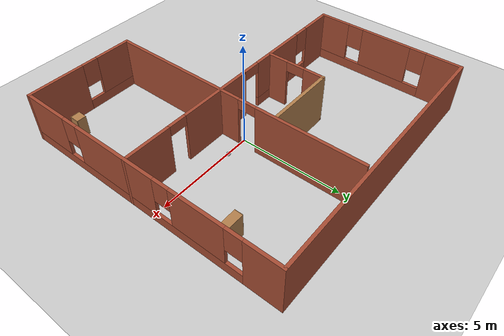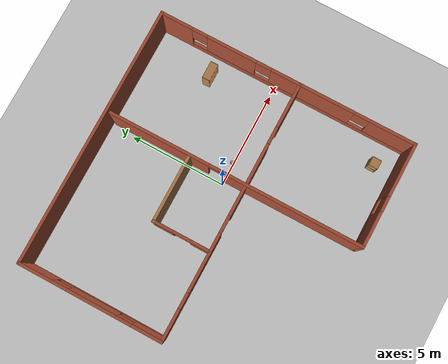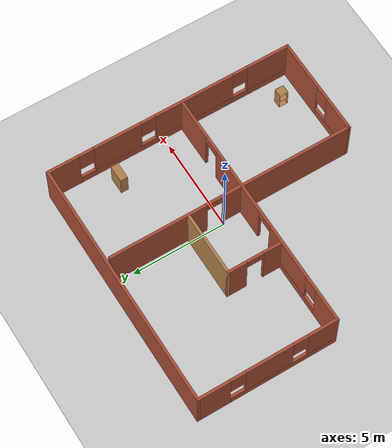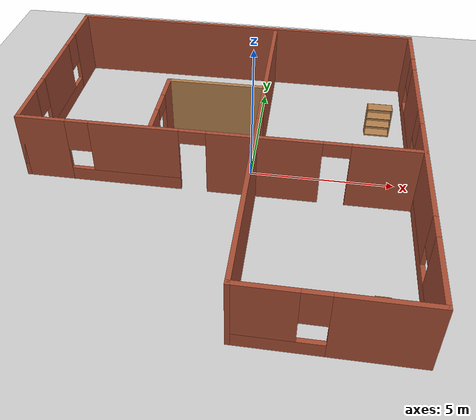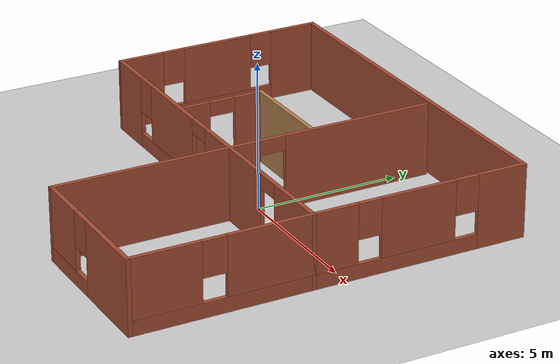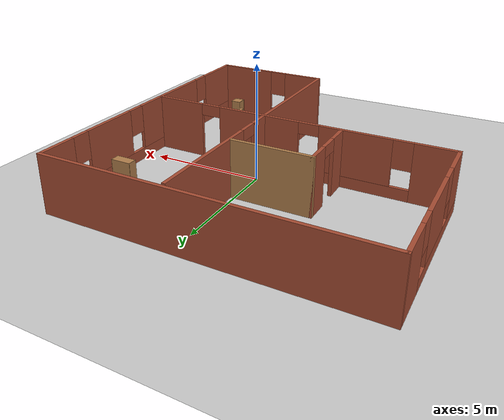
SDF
<sdf version="1.6">
 <world name="default">
  <plugin name="hello" filename="libhello.so"/>
  <light name="sun" type="directional">
   <pose>0 0 10 0 -0 0</pose>
   <diffuse>0.8 0.8 0.8 1</diffuse>
   <specular>0.2 0.2 0.2 1</specular>
   <attenuation>
    <range>1000</range>
    <constant>0.9</constant>
    <linear>0.01</linear>
    <quadratic>0.001</quadratic>
   </attenuation>
   <direction>-0.5 0.1 -0.9</direction>
  </light>
  <model name="ground_plane">
   <static>1</static>
   <link name="link">
    <collision name="collision">
     <geometry><plane><normal>0 0 1</normal><size>100 100</size></plane></geometry>
     <surface>
      <contact><collide_bitmask>65535</collide_bitmask></contact>
      <friction><ode><mu>100</mu><mu2>50</mu2></ode></friction>
     </surface>
    </collision>
    <visual name="visual">
     <cast_shadows>0</cast_shadows>
     <geometry><plane><normal>0 0 1</normal><size>100 100</size></plane></geometry>
     <material>
      <script><uri>file://media/materials/scripts/gazebo.material</uri><name>Gazebo/Grey</name></script>
     </material>
    </visual>
   </link>
  </model>
  <gravity>0 0 -9.8</gravity>
  <magnetic_field>6e-06 2.3e-05 -4.2e-05</magnetic_field>
  <atmosphere type="adiabatic"/>
  <physics name="default_physics" default="0" type="ode">
   <max_step_size>0.001</max_step_size>
   <real_time_factor>1</real_time_factor>
   <real_time_update_rate>1000</real_time_update_rate>
  </physics>
  <scene><ambient>0.4 0.4 0.4 1</ambient><background>0.7 0.7 0.7 1</background><shadows>1</shadows></scene>
  <spherical_coordinates>
   <surface_model>EARTH_WGS84</surface_model>
   <latitude_deg>0</latitude_deg>
   <longitude_deg>0</longitude_deg>
   <elevation>0</elevation>
   <heading_deg>0</heading_deg>
  </spherical_coordinates>
  <model name="robot_house">
   <pose>-1.10068 -0.42789 0 0 -0 0</pose>
   <link name="Wall_0">
    <collision name="Wall_0_Collision">
     <geometry><box><size>13.5 0.15 2.5</size></box></geometry>
     <pose>0 0 1.25 0 -0 0</pose>
    </collision>
    <visual name="Wall_0_Visual">
     <pose>0 0 1.25 0 -0 0</pose>
     <geometry><box><size>13.5 0.15 2.5</size></box></geometry>
     <material>
      <script><uri>file://media/materials/scripts/gazebo.material</uri><name>Gazebo/Bricks</name></script>
      <ambient>1 1 1 1</ambient>
     </material>
     <meta><layer>0</layer></meta>
    </visual>
    <pose>0 6.675 0 0 -0 0</pose>
   </link>
   <link name="Wall_1">
    <pose>6.675 0 0 0 0 -1.5708</pose>
    <visual name="Wall_1_Visual_0">
     <pose>-5.88652 0 1.25 0 -0 0</pose>
     <geometry><box><size>1.72695 0.15 2.5</size></box></geometry>
     <material>
      <script><uri>file://media/materials/scripts/gazebo.material</uri><name>Gazebo/Bricks</name></script>
      <ambient>1 1 1 1</ambient>
     </material>
     <meta><layer>0</layer></meta>
    </visual>
    <collision name="Wall_1_Collision_0">
     <geometry><box><size>1.72695 0.15 2.5</size></box></geometry>
     <pose>-5.88652 0 1.25 0 -0 0</pose>
    </collision>
    <visual name="Wall_1_Visual_1">
     <pose>0.863477 0 0.25 0 -0 0</pose>
     <geometry><box><size>11.773 0.15 0.5</size></box></geometry>
     <material>
      <script><uri>file://media/materials/scripts/gazebo.material</uri><name>Gazebo/Bricks</name></script>
      <ambient>1 1 1 1</ambient>
     </material>
     <meta><layer>0</layer></meta>
    </visual>
    <collision name="Wall_1_Collision_1">
     <geometry><box><size>11.773 0.15 0.5</size></box></geometry>
     <pose>0.863477 0 0.25 0 -0 0</pose>
    </collision>
    <visual name="Wall_1_Visual_2">
     <pose>-2.92488 0 1.5 0 -0 0</pose>
     <geometry><box><size>2.59634 0.15 2</size></box></geometry>
     <material>
      <script><uri>file://media/materials/scripts/gazebo.material</uri><name>Gazebo/Bricks</name></script>
      <ambient>1 1 1 1</ambient>
     </material>
     <meta><layer>0</layer></meta>
    </visual>
    <collision name="Wall_1_Collision_2">
     <geometry><box><size>2.59634 0.15 2</size></box></geometry>
     <pose>-2.92488 0 1.5 0 -0 0</pose>
    </collision>
    <visual name="Wall_1_Visual_3">
     <pose>1.35593 0 1.5 0 -0 0</pose>
     <geometry><box><size>4.36526 0.15 2</size></box></geometry>
     <material>
      <script><uri>file://media/materials/scripts/gazebo.material</uri><name>Gazebo/Bricks</name></script>
      <ambient>1 1 1 1</ambient>
     </material>
     <meta><layer>0</layer></meta>
    </visual>
    <collision name="Wall_1_Collision_3">
     <geometry><box><size>4.36526 0.15 2</size></box></geometry>
     <pose>1.35593 0 1.5 0 -0 0</pose>
    </collision>
    <visual name="Wall_1_Visual_4">
     <pose>5.54428 0 1.5 0 -0 0</pose>
     <geometry><box><size>2.41144 0.15 2</size></box></geometry>
     <material>
      <script><uri>file://media/materials/scripts/gazebo.material</uri><name>Gazebo/Bricks</name></script>
      <ambient>1 1 1 1</ambient>
     </material>
     <meta><layer>0</layer></meta>
    </visual>
    <collision name="Wall_1_Collision_4">
     <geometry><box><size>2.41144 0.15 2</size></box></geometry>
     <pose>5.54428 0 1.5 0 -0 0</pose>
    </collision>
    <visual name="Wall_1_Visual_5">
     <pose>-4.62305 0 1.9 0 -0 0</pose>
     <geometry><box><size>0.8 0.15 1.2</size></box></geometry>
     <material>
      <script><uri>file://media/materials/scripts/gazebo.material</uri><name>Gazebo/Bricks</name></script>
      <ambient>1 1 1 1</ambient>
     </material>
     <meta><layer>0</layer></meta>
    </visual>
    <collision name="Wall_1_Collision_5">
     <geometry><box><size>0.8 0.15 1.2</size></box></geometry>
     <pose>-4.62305 0 1.9 0 -0 0</pose>
    </collision>
    <visual name="Wall_1_Visual_6">
     <pose>-1.22671 0 1.9 0 -0 0</pose>
     <geometry><box><size>0.8 0.15 1.2</size></box></geometry>
     <material>
      <script><uri>file://media/materials/scripts/gazebo.material</uri><name>Gazebo/Bricks</name></script>
      <ambient>1 1 1 1</ambient>
     </material>
     <meta><layer>0</layer></meta>
    </visual>
    <collision name="Wall_1_Collision_6">
     <geometry><box><size>0.8 0.15 1.2</size></box></geometry>
     <pose>-1.22671 0 1.9 0 -0 0</pose>
    </collision>
    <visual name="Wall_1_Visual_7">
     <pose>3.93856 0 1.9 0 -0 0</pose>
     <geometry><box><size>0.8 0.15 1.2</size></box></geometry>
     <material>
      <script><uri>file://media/materials/scripts/gazebo.material</uri><name>Gazebo/Bricks</name></script>
      <ambient>1 1 1 1</ambient>
     </material>
     <meta><layer>0</layer></meta>
    </visual>
    <collision name="Wall_1_Collision_7">
     <geometry><box><size>0.8 0.15 1.2</size></box></geometry>
     <pose>3.93856 0 1.9 0 -0 0</pose>
    </collision>
   </link>
   <link name="Wall_2">
    <pose>4 -6.675 0 0 -0 3.14159</pose>
    <visual name="Wall_2_Visual_0">
     <pose>-1.3497 0 1.25 0 -0 0</pose>
     <geometry><box><size>2.80061 0.15 2.5</size></box></geometry>
     <material>
      <script><uri>file://media/materials/scripts/gazebo.material</uri><name>Gazebo/Bricks</name></script>
      <ambient>1 1 1 1</ambient>
     </material>
     <meta><layer>0</layer></meta>
    </visual>
    <collision name="Wall_2_Collision_0">
     <geometry><box><size>2.80061 0.15 2.5</size></box></geometry>
     <pose>-1.3497 0 1.25 0 -0 0</pose>
    </collision>
    <visual name="Wall_2_Visual_1">
     <pose>1.4003 0 0.25 0 -0 0</pose>
     <geometry><box><size>2.69939 0.15 0.5</size></box></geometry>
     <material>
      <script><uri>file://media/materials/scripts/gazebo.material</uri><name>Gazebo/Bricks</name></script>
      <ambient>1 1 1 1</ambient>
     </material>
     <meta><layer>0</layer></meta>
    </visual>
    <collision name="Wall_2_Collision_1">
     <geometry><box><size>2.69939 0.15 0.5</size></box></geometry>
     <pose>1.4003 0 0.25 0 -0 0</pose>
    </collision>
    <visual name="Wall_2_Visual_2">
     <pose>1.8003 0 1.5 0 -0 0</pose>
     <geometry><box><size>1.89939 0.15 2</size></box></geometry>
     <material>
      <script><uri>file://media/materials/scripts/gazebo.material</uri><name>Gazebo/Bricks</name></script>
      <ambient>1 1 1 1</ambient>
     </material>
     <meta><layer>0</layer></meta>
    </visual>
    <collision name="Wall_2_Collision_2">
     <geometry><box><size>1.89939 0.15 2</size></box></geometry>
     <pose>1.8003 0 1.5 0 -0 0</pose>
    </collision>
    <visual name="Wall_2_Visual_3">
     <pose>0.450605 0 1.9 0 -0 0</pose>
     <geometry><box><size>0.8 0.15 1.2</size></box></geometry>
     <material>
      <script><uri>file://media/materials/scripts/gazebo.material</uri><name>Gazebo/Bricks</name></script>
      <ambient>1 1 1 1</ambient>
     </material>
     <meta><layer>0</layer></meta>
    </visual>
    <collision name="Wall_2_Collision_3">
     <geometry><box><size>0.8 0.15 1.2</size></box></geometry>
     <pose>0.450605 0 1.9 0 -0 0</pose>
    </collision>
   </link>
   <link name="Wall_3">
    <pose>1.325 -0.125 0 0 -0 1.5708</pose>
    <visual name="Wall_3_Visual_0">
     <pose>-3.07392 0 1.25 0 -0 0</pose>
     <geometry><box><size>7.10216 0.15 2.5</size></box></geometry>
     <material>
      <script><uri>file://media/materials/scripts/gazebo.material</uri><name>Gazebo/Bricks</name></script>
      <ambient>1 1 1 1</ambient>
     </material>
     <meta><layer>0</layer></meta>
    </visual>
    <collision name="Wall_3_Collision_0">
     <geometry><box><size>7.10216 0.15 2.5</size></box></geometry>
     <pose>-3.07392 0 1.25 0 -0 0</pose>
    </collision>
    <visual name="Wall_3_Visual_1">
     <pose>4.00108 0 1.25 0 -0 0</pose>
     <geometry><box><size>5.24784 0.15 2.5</size></box></geometry>
     <material>
      <script><uri>file://media/materials/scripts/gazebo.material</uri><name>Gazebo/Bricks</name></script>
      <ambient>1 1 1 1</ambient>
     </material>
     <meta><layer>0</layer></meta>
    </visual>
    <collision name="Wall_3_Collision_1">
     <geometry><box><size>5.24784 0.15 2.5</size></box></geometry>
     <pose>4.00108 0 1.25 0 -0 0</pose>
    </collision>
    <visual name="Wall_3_Visual_2">
     <pose>0.927164 0 2.25 0 -0 0</pose>
     <geometry><box><size>0.9 0.15 0.5</size></box></geometry>
     <material>
      <script><uri>file://media/materials/scripts/gazebo.material</uri><name>Gazebo/Bricks</name></script>
      <ambient>1 1 1 1</ambient>
     </material>
     <meta><layer>0</layer></meta>
    </visual>
    <collision name="Wall_3_Collision_2">
     <geometry><box><size>0.9 0.15 0.5</size></box></geometry>
     <pose>0.927164 0 2.25 0 -0 0</pose>
    </collision>
   </link>
   <link name="Wall_5">
    <pose>-6.675 3 0 0 0 -1.5708</pose>
    <visual name="Wall_5_Visual_0">
     <pose>-2.86883 0 1.25 0 -0 0</pose>
     <geometry><box><size>1.76233 0.15 2.5</size></box></geometry>
     <material>
      <script><uri>file://media/materials/scripts/gazebo.material</uri><name>Gazebo/Bricks</name></script>
      <ambient>1 1 1 1</ambient>
     </material>
     <meta><layer>0</layer></meta>
    </visual>
    <collision name="Wall_5_Collision_0">
     <geometry><box><size>1.76233 0.15 2.5</size></box></geometry>
     <pose>-2.86883 0 1.25 0 -0 0</pose>
    </collision>
    <visual name="Wall_5_Visual_1">
     <pose>0.881167 0 0.25 0 -0 0</pose>
     <geometry><box><size>5.73767 0.15 0.5</size></box></geometry>
     <material>
      <script><uri>file://media/materials/scripts/gazebo.material</uri><name>Gazebo/Bricks</name></script>
      <ambient>1 1 1 1</ambient>
     </material>
     <meta><layer>0</layer></meta>
    </visual>
    <collision name="Wall_5_Collision_1">
     <geometry><box><size>5.73767 0.15 0.5</size></box></geometry>
     <pose>0.881167 0 0.25 0 -0 0</pose>
    </collision>
    <visual name="Wall_5_Visual_2">
     <pose>0.075124 0 1.5 0 -0 0</pose>
     <geometry><box><size>2.52558 0.15 2</size></box></geometry>
     <material>
      <script><uri>file://media/materials/scripts/gazebo.material</uri><name>Gazebo/Bricks</name></script>
      <ambient>1 1 1 1</ambient>
     </material>
     <meta><layer>0</layer></meta>
    </visual>
    <collision name="Wall_5_Collision_2">
     <geometry><box><size>2.52558 0.15 2</size></box></geometry>
     <pose>0.075124 0 1.5 0 -0 0</pose>
    </collision>
    <visual name="Wall_5_Visual_3">
     <pose>2.94396 0 1.5 0 -0 0</pose>
     <geometry><box><size>1.61208 0.15 2</size></box></geometry>
     <material>
      <script><uri>file://media/materials/scripts/gazebo.material</uri><name>Gazebo/Bricks</name></script>
      <ambient>1 1 1 1</ambient>
     </material>
     <meta><layer>0</layer></meta>
    </visual>
    <collision name="Wall_5_Collision_3">
     <geometry><box><size>1.61208 0.15 2</size></box></geometry>
     <pose>2.94396 0 1.5 0 -0 0</pose>
    </collision>
    <visual name="Wall_5_Visual_4">
     <pose>-1.58767 0 1.9 0 -0 0</pose>
     <geometry><box><size>0.8 0.15 1.2</size></box></geometry>
     <material>
      <script><uri>file://media/materials/scripts/gazebo.material</uri><name>Gazebo/Bricks</name></script>
      <ambient>1 1 1 1</ambient>
     </material>
     <meta><layer>0</layer></meta>
    </visual>
    <collision name="Wall_5_Collision_4">
     <geometry><box><size>0.8 0.15 1.2</size></box></geometry>
     <pose>-1.58767 0 1.9 0 -0 0</pose>
    </collision>
    <visual name="Wall_5_Visual_5">
     <pose>1.73792 0 1.9 0 -0 0</pose>
     <geometry><box><size>0.8 0.15 1.2</size></box></geometry>
     <material>
      <script><uri>file://media/materials/scripts/gazebo.material</uri><name>Gazebo/Bricks</name></script>
      <ambient>1 1 1 1</ambient>
     </material>
     <meta><layer>0</layer></meta>
    </visual>
    <collision name="Wall_5_Collision_5">
     <geometry><box><size>0.8 0.15 1.2</size></box></geometry>
     <pose>1.73792 0 1.9 0 -0 0</pose>
    </collision>
   </link>
   <link name="Wall_6">
    <pose>0 -0.675 0 0 -0 0</pose>
    <visual name="Wall_6_Visual_0">
     <pose>-5.88652 0 1.25 0 -0 0</pose>
     <geometry><box><size>1.72696 0.15 2.5</size></box></geometry>
     <material>
      <script><uri>file://media/materials/scripts/gazebo.material</uri><name>Gazebo/Bricks</name></script>
      <ambient>1 1 1 1</ambient>
     </material>
     <meta><layer>0</layer></meta>
    </visual>
    <collision name="Wall_6_Collision_0">
     <geometry><box><size>1.72696 0.15 2.5</size></box></geometry>
     <pose>-5.88652 0 1.25 0 -0 0</pose>
    </collision>
    <visual name="Wall_6_Visual_1">
     <pose>1.60358 0 1.25 0 -0 0</pose>
     <geometry><box><size>3.76997 0.15 2.5</size></box></geometry>
     <material>
      <script><uri>file://media/materials/scripts/gazebo.material</uri><name>Gazebo/Bricks</name></script>
      <ambient>1 1 1 1</ambient>
     </material>
     <meta><layer>0</layer></meta>
    </visual>
    <collision name="Wall_6_Collision_1">
     <geometry><box><size>3.76997 0.15 2.5</size></box></geometry>
     <pose>1.60358 0 1.25 0 -0 0</pose>
    </collision>
    <visual name="Wall_6_Visual_2">
     <pose>5.56928 0 1.25 0 -0 0</pose>
     <geometry><box><size>2.36144 0.15 2.5</size></box></geometry>
     <material>
      <script><uri>file://media/materials/scripts/gazebo.material</uri><name>Gazebo/Bricks</name></script>
      <ambient>1 1 1 1</ambient>
     </material>
     <meta><layer>0</layer></meta>
    </visual>
    <collision name="Wall_6_Collision_2">
     <geometry><box><size>2.36144 0.15 2.5</size></box></geometry>
     <pose>5.56928 0 1.25 0 -0 0</pose>
    </collision>
    <visual name="Wall_6_Visual_3">
     <pose>-3.10223 0 0.25 0 -0 0</pose>
     <geometry><box><size>3.84164 0.15 0.5</size></box></geometry>
     <material>
      <script><uri>file://media/materials/scripts/gazebo.material</uri><name>Gazebo/Bricks</name></script>
      <ambient>1 1 1 1</ambient>
     </material>
     <meta><layer>0</layer></meta>
    </visual>
    <collision name="Wall_6_Collision_3">
     <geometry><box><size>3.84164 0.15 0.5</size></box></geometry>
     <pose>-3.10223 0 0.25 0 -0 0</pose>
    </collision>
    <visual name="Wall_6_Visual_4">
     <pose>-2.70223 0 1.5 0 -0 0</pose>
     <geometry><box><size>3.04164 0.15 2</size></box></geometry>
     <material>
      <script><uri>file://media/materials/scripts/gazebo.material</uri><name>Gazebo/Bricks</name></script>
      <ambient>1 1 1 1</ambient>
     </material>
     <meta><layer>0</layer></meta>
    </visual>
    <collision name="Wall_6_Collision_4">
     <geometry><box><size>3.04164 0.15 2</size></box></geometry>
     <pose>-2.70223 0 1.5 0 -0 0</pose>
    </collision>
    <visual name="Wall_6_Visual_5">
     <pose>-4.62305 0 1.9 0 -0 0</pose>
     <geometry><box><size>0.8 0.15 1.2</size></box></geometry>
     <material>
      <script><uri>file://media/materials/scripts/gazebo.material</uri><name>Gazebo/Bricks</name></script>
      <ambient>1 1 1 1</ambient>
     </material>
     <meta><layer>0</layer></meta>
    </visual>
    <collision name="Wall_6_Collision_5">
     <geometry><box><size>0.8 0.15 1.2</size></box></geometry>
     <pose>-4.62305 0 1.9 0 -0 0</pose>
    </collision>
    <visual name="Wall_6_Visual_6">
     <pose>3.93856 0 2.25 0 -0 0</pose>
     <geometry><box><size>0.9 0.15 0.5</size></box></geometry>
     <material>
      <script><uri>file://media/materials/scripts/gazebo.material</uri><name>Gazebo/Bricks</name></script>
      <ambient>1 1 1 1</ambient>
     </material>
     <meta><layer>0</layer></meta>
    </visual>
    <collision name="Wall_6_Collision_6">
     <geometry><box><size>0.9 0.15 0.5</size></box></geometry>
     <pose>3.93856 0 2.25 0 -0 0</pose>
    </collision>
    <visual name="Wall_6_Visual_7">
     <pose>-0.731407 0 2.25 0 -0 0</pose>
     <geometry><box><size>0.9 0.15 0.5</size></box></geometry>
     <material>
      <script><uri>file://media/materials/scripts/gazebo.material</uri><name>Gazebo/Bricks</name></script>
      <ambient>1 1 1 1</ambient>
     </material>
     <meta><layer>0</layer></meta>
    </visual>
    <collision name="Wall_6_Collision_7">
     <geometry><box><size>0.9 0.15 0.5</size></box></geometry>
     <pose>-0.731407 0 2.25 0 -0 0</pose>
    </collision>
   </link>
   <link name="Wall_8">
    <collision name="Wall_8_Collision">
     <geometry><box><size>3.5 0.15 2.5</size></box></geometry>
     <pose>0 0 1.25 0 -0 0</pose>
    </collision>
    <visual name="Wall_8_Visual">
     <pose>0 0 1.25 0 -0 0</pose>
     <geometry><box><size>3.5 0.15 2.5</size></box></geometry>
     <material>
      <script><uri>file://media/materials/scripts/gazebo.material</uri><name>Gazebo/Wood</name></script>
      <ambient>1 1 1 1</ambient>
     </material>
     <meta><layer>0</layer></meta>
    </visual>
    <pose>-0.460588 2.25268 0 0 -0 3.14159</pose>
   </link>
   <link name="Wall_9">
    <pose>-2.13559 0.827684 0 0 0 -1.5708</pose>
    <visual name="Wall_9_Visual_0">
     <pose>-0.96224 0 1.25 0 -0 0</pose>
     <geometry><box><size>1.07552 0.15 2.5</size></box></geometry>
     <material>
      <script><uri>file://media/materials/scripts/gazebo.material</uri><name>Gazebo/Bricks</name></script>
      <ambient>1 1 1 1</ambient>
     </material>
     <meta><layer>0</layer></meta>
    </visual>
    <collision name="Wall_9_Collision_0">
     <geometry><box><size>1.07552 0.15 2.5</size></box></geometry>
     <pose>-0.96224 0 1.25 0 -0 0</pose>
    </collision>
    <visual name="Wall_9_Visual_1">
     <pose>0.98776 0 1.25 0 -0 0</pose>
     <geometry><box><size>1.02448 0.15 2.5</size></box></geometry>
     <material>
      <script><uri>file://media/materials/scripts/gazebo.material</uri><name>Gazebo/Bricks</name></script>
      <ambient>1 1 1 1</ambient>
     </material>
     <meta><layer>0</layer></meta>
    </visual>
    <collision name="Wall_9_Collision_1">
     <geometry><box><size>1.02448 0.15 2.5</size></box></geometry>
     <pose>0.98776 0 1.25 0 -0 0</pose>
    </collision>
    <visual name="Wall_9_Visual_2">
     <pose>0.02552 0 2.25 0 -0 0</pose>
     <geometry><box><size>0.9 0.15 0.5</size></box></geometry>
     <material>
      <script><uri>file://media/materials/scripts/gazebo.material</uri><name>Gazebo/Bricks</name></script>
      <ambient>1 1 1 1</ambient>
     </material>
     <meta><layer>0</layer></meta>
    </visual>
    <collision name="Wall_9_Collision_2">
     <geometry><box><size>0.9 0.15 0.5</size></box></geometry>
     <pose>0.02552 0 2.25 0 -0 0</pose>
    </collision>
   </link>
   <static>1</static>
  </model>
  <model name="bookshelf">
   <static>1</static>
   <link name="link">
    <inertial><mass>1</mass></inertial>
    <collision name="back">
     <pose>0 0.005 0.6 0 -0 0</pose>
     <geometry><box><size>0.9 0.01 1.2</size></box></geometry>
    </collision>
    <visual name="visual1">
     <pose>0 0.005 0.6 0 -0 0</pose>
     <geometry><box><size>0.9 0.01 1.2</size></box></geometry>
     <material>
      <script><uri>file://media/materials/scripts/gazebo.material</uri><name>Gazebo/Wood</name></script>
     </material>
    </visual>
    <collision name="left_side">
     <pose>0.45 -0.195 0.6 0 -0 0</pose>
     <geometry><box><size>0.02 0.4 1.2</size></box></geometry>
    </collision>
    <visual name="visual2">
     <pose>0.45 -0.195 0.6 0 -0 0</pose>
     <geometry><box><size>0.02 0.4 1.2</size></box></geometry>
     <material>
      <script><uri>file://media/materials/scripts/gazebo.material</uri><name>Gazebo/Wood</name></script>
     </material>
    </visual>
    <collision name="right_side">
     <pose>-0.45 -0.195 0.6 0 -0 0</pose>
     <geometry><box><size>0.02 0.4 1.2</size></box></geometry>
    </collision>
    <visual name="visual3">
     <pose>-0.45 -0.195 0.6 0 -0 0</pose>
     <geometry><box><size>0.02 0.4 1.2</size></box></geometry>
     <material>
      <script><uri>file://media/materials/scripts/gazebo.material</uri><name>Gazebo/Wood</name></script>
     </material>
    </visual>
    <collision name="bottom">
     <pose>0 -0.195 0.03 0 -0 0</pose>
     <geometry><box><size>0.88 0.4 0.06</size></box></geometry>
    </collision>
    <visual name="visual4">
     <pose>0 -0.195 0.03 0 -0 0</pose>
     <geometry><box><size>0.88 0.4 0.06</size></box></geometry>
     <material>
      <script><uri>file://media/materials/scripts/gazebo.material</uri><name>Gazebo/Wood</name></script>
     </material>
    </visual>
    <collision name="top">
     <pose>0 -0.195 1.19 0 -0 0</pose>
     <geometry><box><size>0.88 0.4 0.02</size></box></geometry>
    </collision>
    <visual name="visual5">
     <pose>0 -0.195 1.19 0 -0 0</pose>
     <geometry><box><size>0.88 0.4 0.02</size></box></geometry>
     <material>
      <script><uri>file://media/materials/scripts/gazebo.material</uri><name>Gazebo/Wood</name></script>
     </material>
    </visual>
    <collision name="low_shelf">
     <pose>0 -0.195 0.43 0 -0 0</pose>
     <geometry><box><size>0.88 0.4 0.02</size></box></geometry>
    </collision>
    <visual name="visual6">
     <pose>0 -0.195 0.43 0 -0 0</pose>
     <geometry><box><size>0.88 0.4 0.02</size></box></geometry>
     <material>
      <script><uri>file://media/materials/scripts/gazebo.material</uri><name>Gazebo/Wood</name></script>
     </material>
    </visual>
    <collision name="high_shelf">
     <pose>0 -0.195 0.8 0 -0 0</pose>
     <geometry><box><size>0.88 0.4 0.02</size></box></geometry>
    </collision>
    <visual name="visual7">
     <pose>0 -0.195 0.8 0 -0 0</pose>
     <geometry><box><size>0.88 0.4 0.02</size></box></geometry>
     <material>
      <script><uri>file://media/materials/scripts/gazebo.material</uri><name>Gazebo/Wood</name></script>
     </material>
    </visual>
   </link>
   <pose>4.4774 3.27586 0 0 -0 0</pose>
  </model>
  <model name="cabinet">
   <static>1</static>
   <link name="cabinet_bottom_plate">
    <inertial>
     <pose>0 0 -1 0 -0 0</pose>
     <inertia><ixx>2.05</ixx><ixy>0</ixy><ixz>0</ixz><iyy>2.05</iyy><iyz>0</iyz><izz>2.05</izz></inertia>
     <mass>25</mass>
    </inertial>
    <collision name="cabinet_bottom_plate_geom">
     <pose>0 0 0.01 0 -0 0</pose>
     <geometry><box><size>0.45 0.45 0.02</size></box></geometry>
    </collision>
    <visual name="cabinet_bottom_plate_geom_visual">
     <pose>0 0 0.01 0 -0 0</pose>
     <geometry><box><size>0.45 0.45 0.02</size></box></geometry>
     <material>
      <script><uri>file://media/materials/scripts/gazebo.material</uri><name>Gazebo/Wood</name></script>
     </material>
    </visual>
    <collision name="cabinet_bottom_plate_geom_cabinet_back_plate">
     <pose>0.235 0 0.51 0 -0 0</pose>
     <geometry><box><size>0.02 0.45 1.02</size></box></geometry>
    </collision>
    <visual name="cabinet_bottom_plate_geom_cabinet_back_plate_visual">
     <pose>0.235 0 0.51 0 -0 0</pose>
     <geometry><box><size>0.02 0.45 1.02</size></box></geometry>
     <material>
      <script><uri>file://media/materials/scripts/gazebo.material</uri><name>Gazebo/Wood</name></script>
     </material>
    </visual>
    <collision name="cabinet_bottom_plate_geom_cabinet_left_plate">
     <pose>0 0.235 0.51 0 -0 0</pose>
     <geometry><box><size>0.45 0.02 1.02</size></box></geometry>
    </collision>
    <visual name="cabinet_bottom_plate_geom_cabinet_left_plate_visual">
     <pose>0 0.235 0.51 0 -0 0</pose>
     <geometry><box><size>0.45 0.02 1.02</size></box></geometry>
     <material>
      <script><uri>file://media/materials/scripts/gazebo.material</uri><name>Gazebo/Wood</name></script>
     </material>
    </visual>
    <collision name="cabinet_bottom_plate_geom_cabinet_middle_plate">
     <pose>0 0 0.51 0 -0 0</pose>
     <geometry><box><size>0.45 0.45 0.02</size></box></geometry>
    </collision>
    <visual name="cabinet_bottom_plate_geom_cabinet_middle_plate_visual">
     <pose>0 0 0.51 0 -0 0</pose>
     <geometry><box><size>0.45 0.45 0.02</size></box></geometry>
     <material>
      <script><uri>file://media/materials/scripts/gazebo.material</uri><name>Gazebo/Wood</name></script>
     </material>
    </visual>
    <collision name="cabinet_bottom_plate_geom_cabinet_right_plate">
     <pose>0 -0.235 0.51 0 -0 0</pose>
     <geometry><box><size>0.45 0.02 1.02</size></box></geometry>
    </collision>
    <visual name="cabinet_bottom_plate_geom_cabinet_right_plate_visual">
     <pose>0 -0.235 0.51 0 -0 0</pose>
     <geometry><box><size>0.45 0.02 1.02</size></box></geometry>
     <material>
      <script><uri>file://media/materials/scripts/gazebo.material</uri><name>Gazebo/Wood</name></script>
     </material>
    </visual>
    <collision name="cabinet_bottom_plate_geom_cabinet_top_plate">
     <pose>0 0 1.01 0 -0 0</pose>
     <geometry><box><size>0.45 0.45 0.02</size></box></geometry>
    </collision>
    <visual name="cabinet_bottom_plate_geom_cabinet_top_plate_visual">
     <pose>0 0 1.01 0 -0 0</pose>
     <geometry><box><size>0.45 0.45 0.02</size></box></geometry>
     <material>
      <script><uri>file://media/materials/scripts/gazebo.material</uri><name>Gazebo/Wood</name></script>
     </material>
    </visual>
   </link>
   <pose>4.28385 -6.01048 0 0 -0 0</pose>
  </model>
  <model name="my_ball">
   <link name="link_0">
    <inertial>
     <mass>1</mass>
     <inertia><ixx>0.1</ixx><ixy>0</ixy><ixz>0</ixz><iyy>0.1</iyy><iyz>0</iyz><izz>0.1</izz></inertia>
    </inertial>
    <visual name="visual">
     <geometry><sphere><radius>0.1</radius></sphere></geometry>
     <material>
      <lighting>1</lighting>
      <script><uri>file://media/materials/scripts/gazebo.material</uri><name>Gazebo/Grey</name></script>
      <shader type="pixel"><normal_map>__default__</normal_map></shader>
      <ambient>1 1 1 1</ambient>
      <diffuse>1 1 1 1</diffuse>
      <specular>1 1 1 1</specular>
      <emissive>1 1 1 1</emissive>
     </material>
    </visual>
    <collision name="collision">
     <geometry><sphere><radius>0.1</radius></sphere></geometry>
     <surface>
      <friction>
       <ode><mu>1</mu><mu2>1</mu2><fdir1>0 0 0</fdir1><slip1>0</slip1><slip2>0</slip2></ode>
       <torsional>
        <coefficient>1</coefficient>
        <patch_radius>0</patch_radius>
        <surface_radius>0</surface_radius>
        <use_patch_radius>1</use_patch_radius>
        <ode><slip>0</slip></ode>
       </torsional>
      </friction>
      <bounce><restitution_coefficient>0</restitution_coefficient><threshold>1e+06</threshold></bounce>
      <contact>
       <collide_without_contact>0</collide_without_contact>
       <collide_without_contact_bitmask>1</collide_without_contact_bitmask>
       <collide_bitmask>1</collide_bitmask>
       <ode>
        <soft_cfm>0</soft_cfm>
        <soft_erp>0.2</soft_erp>
        <kp>1e+13</kp>
        <kd>1</kd>
        <max_vel>0.01</max_vel>
        <min_depth>0</min_depth>
       </ode>
       <bullet>
        <split_impulse>1</split_impulse>
        <split_impulse_penetration_threshold>-0.01</split_impulse_penetration_threshold>
        <soft_cfm>0</soft_cfm>
        <soft_erp>0.2</soft_erp>
        <kp>1e+13</kp>
        <kd>1</kd>
       </bullet>
      </contact>
     </surface>
    </collision>
   </link>
   <static>0</static>
   <pose>1.17921 0.083847 0.1 0 -0 0</pose>
  </model>
 </world>
</sdf>
